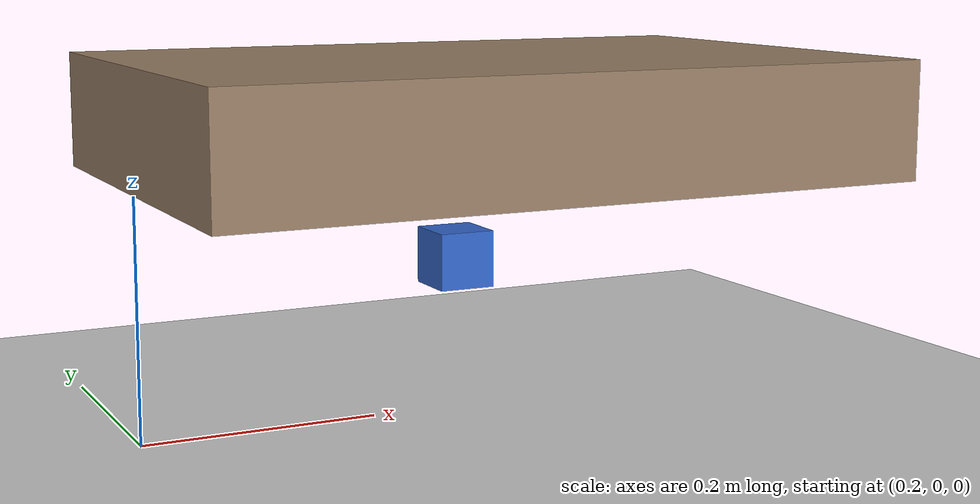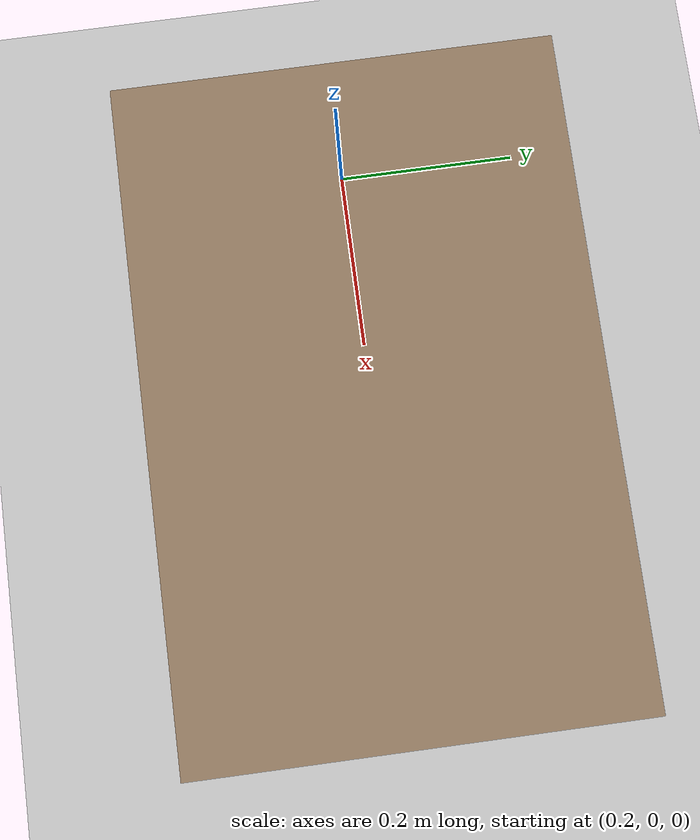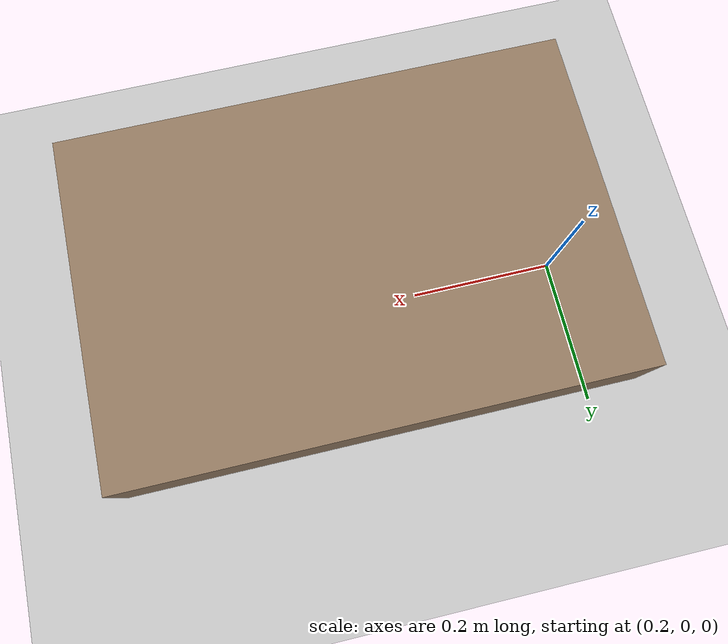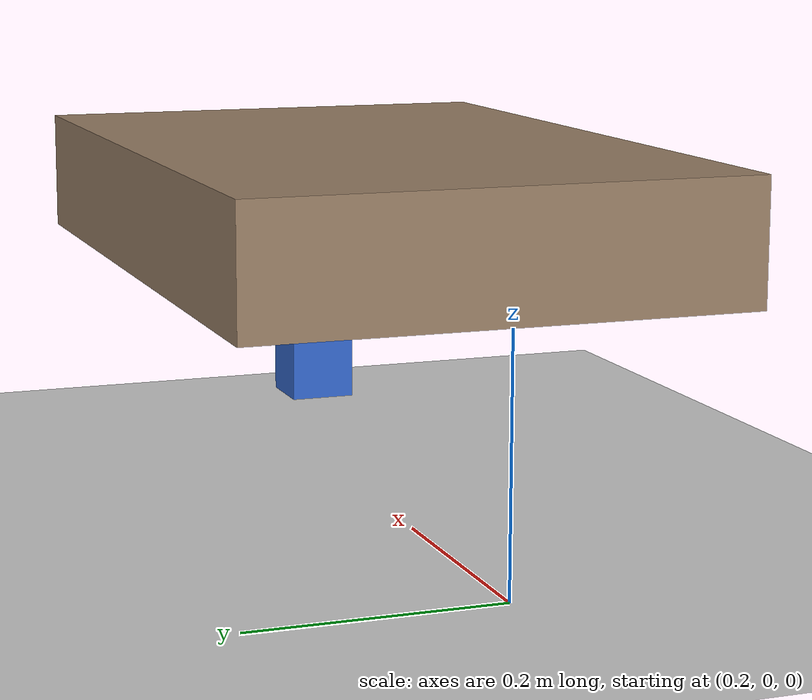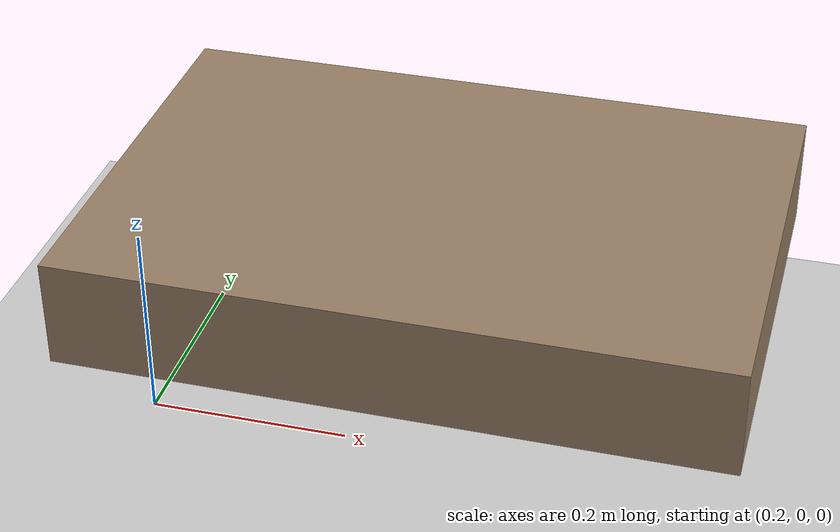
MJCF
<!-- 桌面抓取场景：地面、桌子、可移动方块，供 RAG 驱动的 pick-and-place benchmark -->
<mujoco model="arm_pick_place">
  <option timestep="0.008333" gravity="0 0 -9.81"/>
  <worldbody>
    <geom name="floor" type="plane" size="1 1 0.1" rgba="0.8 0.8 0.8 1"/>
    <body name="table" pos="0.5 0 0.25">
      <geom name="table_top" type="box" size="0.3 0.2 0.05" rgba="0.6 0.5 0.4 1"/>
    </body>
    <body name="object" pos="0.5 0.05 0.12">
      <freejoint name="object_free"/>
      <geom name="box_geom" type="box" size="0.025 0.025 0.025" mass="0.05" friction="0.5 0.15 0.1" rgba="0.2 0.4 0.8 1"/>
    </body>
  </worldbody>
</mujoco>
